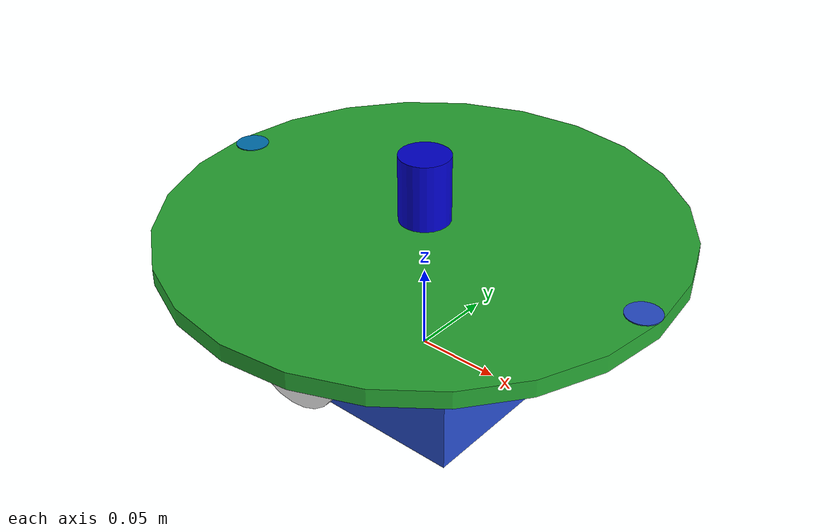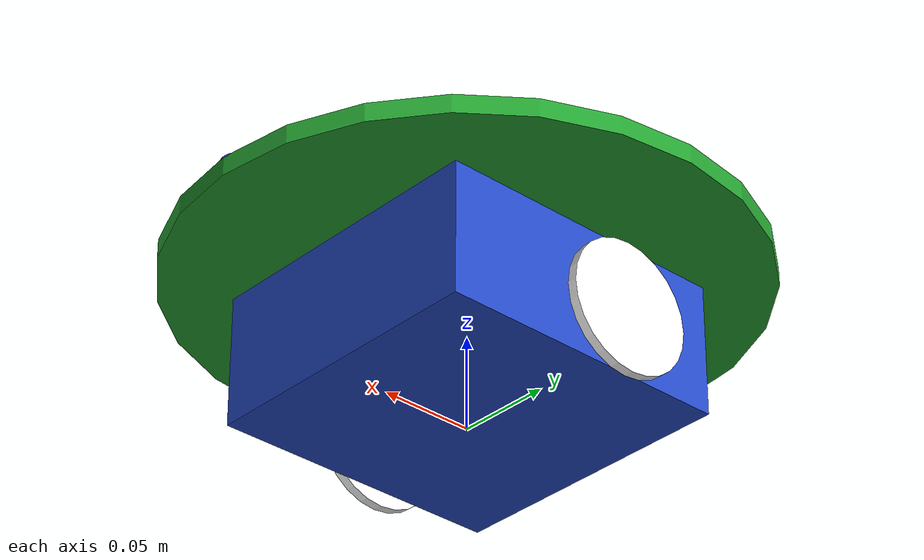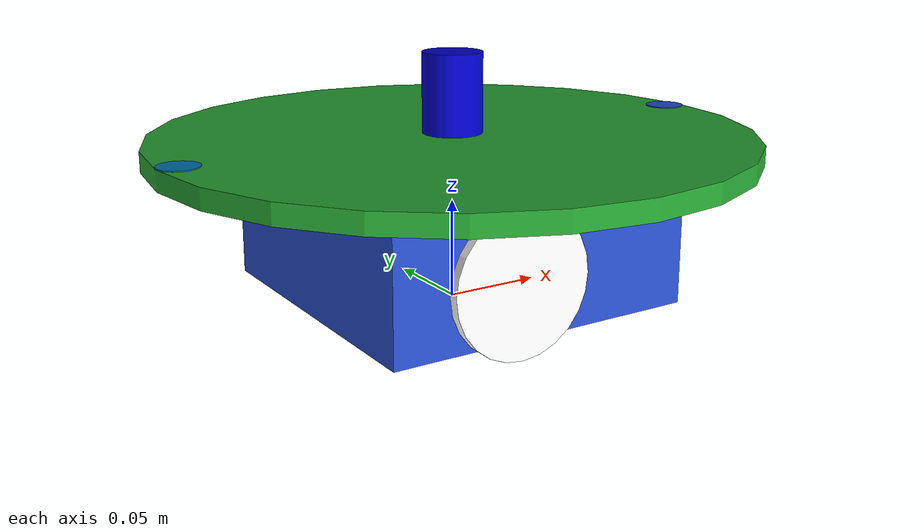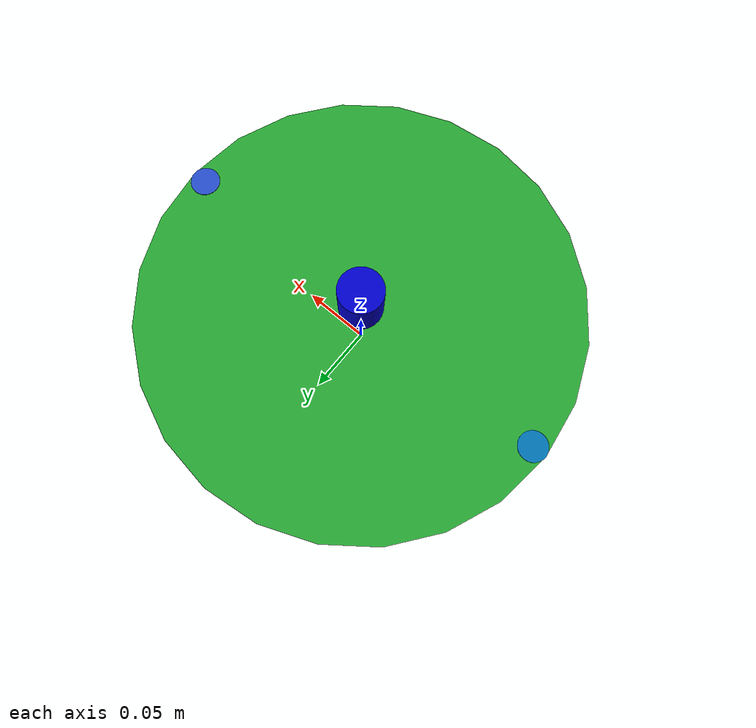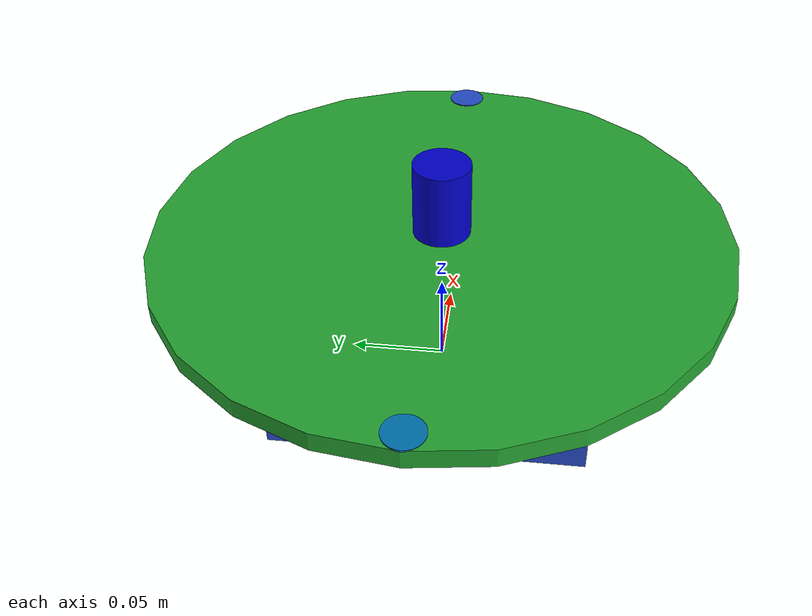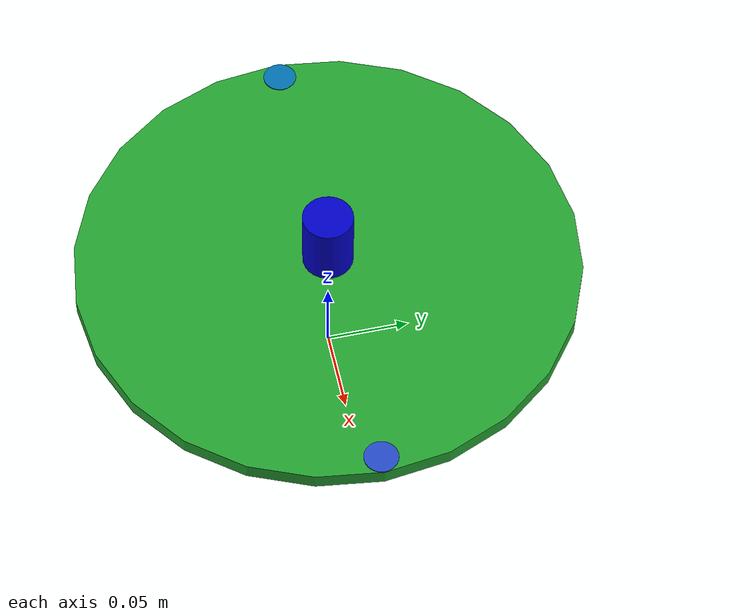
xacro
<?xml version="1.0"?>
<robot name="mv_robot1" xmlns:xacro="http://ros.org/wiki/xacro">

  <xacro:property name="base_width" value="0.16"/>
  <xacro:property name="base_len" value="0.16"/>
  <xacro:property name="base_thick" value="0.07"/>
  <xacro:property name="cover_rad" value="0.15"/>
  <xacro:property name="cover_thick" value="0.01"/>
  <xacro:property name="north_rad" value="0.01"/>

  <xacro:property name="wheel_radius" value="0.035"/>
  <xacro:property name="base_wheel_gap" value="0.007"/>
  <xacro:property name="wheel_separation" value="0.174"/> <!-- not used -->
  <xacro:property name="wheel_joint_offset" value="0.02"/>

  <xacro:property name="caster_wheel_radius" value="${wheel_radius/2}"/>
  <xacro:property name="caster_wheel_mass" value="0.001"/>
  <xacro:property name="caster_wheel_joint_offset" value="0.052"/>

  <!--Gazebo Color Properties-->
  <gazebo reference="base_link">
    <material>Gazebo/Blue</material>
  </gazebo>

  <gazebo reference="top_cover">
    <material>Gazebo/Green</material>
  </gazebo>

  <gazebo reference="left_wheel">
    <material>Gazebo/Yellow</material>
  </gazebo>

  <gazebo reference="right_wheel">
    <material>Gazebo/Green</material>
  </gazebo>

  <gazebo reference="sensor_laser">
    <material>Gazebo/Gray</material>
  </gazebo>

  <gazebo reference="north">
    <material>Gazebo/Blue</material>
  </gazebo>

  <gazebo reference="caster_wheel">
    <material>Gazebo/Blue</material>
    <mu1>0.0</mu1>
    <mu2>0.0</mu2>
    <slip1>1.0</slip1>
    <slip2>1.0</slip2>
    <selfCollide>true</selfCollide>
    <gravity>true</gravity>
  </gazebo>

  <material name="blue">
    <color rgba="0 0 0.8 1"/>
  </material>
  <material name="black">
    <color rgba="0 0 0 1"/>
  </material>
  <material name="white">
    <color rgba="1 1 1 1"/>
  </material>
  <material name="red">
    <color rgba="0.8 0.0 0.0 1.0"/>
  </material>
  <material name="mycolor">
    <color rgba="0.1 0.2 0.2 1.0"/>
  </material>

  <!--Interial macros-->
  <xacro:macro name="cylinder_inertia" params="m r h">
    <inertial>
      <mass value="${m}"/>
      <inertia ixx="${m*(3*r*r+h*h)/12}" ixy = "0" ixz = "0" iyy="${m*(3*r*r+h*h)/12}" iyz = "0" izz="${m*r*r/2}"/>
    </inertial>
  </xacro:macro>

  <xacro:macro name="box_inertia" params="m w h d">
    <inertial>
      <mass value="${m}"/>
      <inertia ixx="${m / 12.0 * (d*d + h*h)}" ixy="0.0" ixz="0.0" iyy="${m / 12.0 * (w*w + h*h)}" iyz="0.0" izz="${m / 12.0 * (w*w + d*d)}"/>
    </inertial>
  </xacro:macro>

  <xacro:macro name="sphere_inertia" params="m r">
    <inertial>
      <mass value="${m}"/>
      <inertia ixx="${2.0*m*(r*r)/5.0}" ixy="0.0" ixz="0.0" iyy="${2.0*m*(r*r)/5.0}" iyz="0.0" izz="${2.0*m*(r*r)/5.0}"/>
    </inertial>
  </xacro:macro>

  <!--Base Footprint-->
  <link name="base_footprint">
    <visual>
        <origin xyz="0 0 0" rpy="0 0 0" />
        <geometry>
            <box size="0.001 0.001 0.001" />
        </geometry>
    </visual>
  </link>

  <!--Base link-->
  <link name="base_link">
    <xacro:box_inertia m="1" w="${base_len}" h="${base_width}" d="0.01"/>
    <visual>
      <geometry>
        <box size="${base_len} ${base_width} ${base_thick}"/>
      </geometry>
    </visual>
    <collision>
      <geometry>
        <box size="${base_len} ${base_width} ${base_thick}"/>
      </geometry>
    </collision>
  </link>
  <link name="top_cover">
    <xacro:cylinder_inertia m="1" r="${cover_rad}" h="${cover_thick}"/>
    <visual>
     <origin xyz="0 0 0" rpy="0 0 0"/>
     <geometry>
        <cylinder radius="${cover_rad}" length="${cover_thick}" />
      </geometry>
    </visual>
    <collision name="cover_collision">
      <origin xyz="0 0 0" rpy="0 0 0"/>
      <geometry>
        <cylinder radius="${cover_rad}" length="${cover_thick}" />
      </geometry>
    </collision>
    <sensor name="my_contact" type="contact">
      <contact>
         <collision>cover_collision</collision>
       </contact>
     </sensor>

  </link>

  <link name="north">
    <visual>
     <origin xyz="0 0 0" rpy="0 0 0"/>
     <geometry>
        <cylinder radius="${north_rad}" length="0.001" />
      </geometry>
    </visual>
    <collision name="north_collision">
      <origin xyz="0 0 0" rpy="0 0 0"/>
      <geometry>
        <cylinder radius="0.01" length="0.001" />
      </geometry>
    </collision>
  </link>
  <joint name="north_cover_joint" type="fixed">
    <axis xyz="0 1 0" rpy="0 0 0" />
    <parent link="top_cover"/>
    <child link="north"/>
    <origin xyz=" ${cover_rad - north_rad} 0 ${cover_thick / 2}" rpy="0 0 0"/>
  </joint>

  <link name="south">
    <visual>
     <origin xyz="0 0 0" rpy="0 0 0"/>
     <geometry>
        <cylinder radius="${north_rad}" length="0.001" />
      </geometry>
    </visual>
    <collision name="north_collision">
      <origin xyz="0 0 0" rpy="0 0 0"/>
      <geometry>
        <cylinder radius="0.01" length="0.001" />
      </geometry>
    </collision>
  </link>
  <joint name="south_cover_joint" type="fixed">
    <axis xyz="0 1 0" rpy="0 0 0" />
    <parent link="top_cover"/>
    <child link="south"/>
    <origin xyz=" ${-cover_rad + north_rad} 0 ${cover_thick / 2}" rpy="0 0 0"/>
  </joint>

  <joint name="cover_base_joint" type="fixed">
    <axis xyz="0 1 0" rpy="0 0 0" />
    <parent link="base_link"/>
    <child link="top_cover"/>
    <origin xyz=" 0 0 ${(base_thick + cover_thick) / 2}" rpy="0 0 0"/>
  </joint>

  <!--base_link to base_footprint Joint-->
  <joint name="base_link_joint" type="fixed">
    <origin xyz="0 0 ${wheel_radius + 0.005}" rpy="0 0 0" />
    <parent link="base_footprint"/>
    <child link="base_link" />
  </joint>

  <!--Wheel link & joint macro-->
  <xacro:macro name="wheel" params="prefix reflect">
    <link name="${prefix}_wheel">
      <visual>
        <origin xyz="0 0 0" rpy="${reflect * pi/2} 0 0"/>
        <geometry>
          <cylinder radius="${wheel_radius}" length="0.005"/>
        </geometry>
        <material name="white"/>
      </visual>
      <collision>
        <origin xyz="0 0 0" rpy="${reflect * pi/2} 0 0"/>
        <geometry>
          <cylinder radius="${wheel_radius}" length="0.005"/>
        </geometry>
        <surface>
          <friction>
            <ode>
              <mu>200.0</mu>
              <mu2>100.0</mu2>
            </ode>
          </friction>
        </surface>
      </collision>
      <xacro:cylinder_inertia m="1" r="${wheel_radius}" h="0.005"/>
    </link>

    <joint name="${prefix}_wheel_joint" type="continuous">
      <axis xyz="0 1 0" rpy="0 0 0" />
      <parent link="base_link"/>
      <child link="${prefix}_wheel"/>
      <origin xyz="${-wheel_joint_offset} ${((base_width/2)+base_wheel_gap)*reflect} -0.005" rpy="0 0 0"/>
    </joint>
    <transmission name="${prefix}_wheel_transmission">
      <type>transmission_interface/SimpleTransmission</type>
      <actuator name="${prefix}_motor">
        <mechanicalReduction>0</mechanicalReduction>
      </actuator>
      <joint name="${prefix}_wheel_joint">
        <hardwareInterface>hardware_interface/VelocityJointInterface</hardwareInterface>
      </joint>
    </transmission>
  </xacro:macro>

  <!--Create Left & Right Wheel links/joints-->
  <xacro:wheel prefix="left" reflect="1"/>
  <xacro:wheel prefix="right" reflect="-1"/>

  <!--Caster Wheel Link -->
  <link name="caster_wheel">
    <visual>
      <origin xyz="0 0 0" rpy="0 0 0"/>
      <geometry>
        <sphere radius="${caster_wheel_radius}"/>
      </geometry>
      <material name="blue"/>
    </visual>
    <collision>
      <origin xyz="0 0 0" rpy="0 0 0"/>
      <geometry>
        <sphere radius="${caster_wheel_radius}"/>
      </geometry>
    </collision>
    <xacro:sphere_inertia m="1" r="${caster_wheel_radius}"/>
  </link>

  <!-- Caster Wheel Joint -->
	<joint name="fixed" type="fixed">
	  	<parent link="base_link"/>
	  	<child link="caster_wheel"/>
	</joint>

  <!-- laser  -->
  <xacro:property name="laser_size_x" value="0.03"/>
  <xacro:property name="laser_size_y" value="0.03"/>
  <xacro:property name="laser_size_z" value="0.04"/>
  <xacro:property name="laser_origin_x" value="0"/>
  <xacro:property name="laser_origin_y" value="0"/>
  <xacro:property name="laser_origin_z" value="${(cover_thick + laser_size_z)/ 2}"/>

  <link name="sensor_laser">
    <visual>
      <geometry>
        <cylinder radius="${laser_size_x / 2}" length="${laser_size_z}" />
      </geometry>
      <material name="blue"/>
    </visual>
   <collision>
      <geometry>
        <cylinder radius="${laser_size_x / 2}" length="${laser_size_z}" />
        </geometry>
    </collision>
    <xacro:box_inertia m="0.2" w="${laser_size_x}" h="${laser_size_y}" d="${laser_size_z}"/>
  </link>

  <joint name="sensor_laser_joint" type="fixed">
    <origin xyz="${laser_origin_x} ${laser_origin_y} ${laser_origin_z}" rpy="0 0 0" />
    <parent link="top_cover"/>
    <child link="sensor_laser" />
  </joint>

  <xacro:include filename="$(find fl_robot_py)/urdf/fl_robot01_gazebo_plugins.xacro"/>

</robot>
